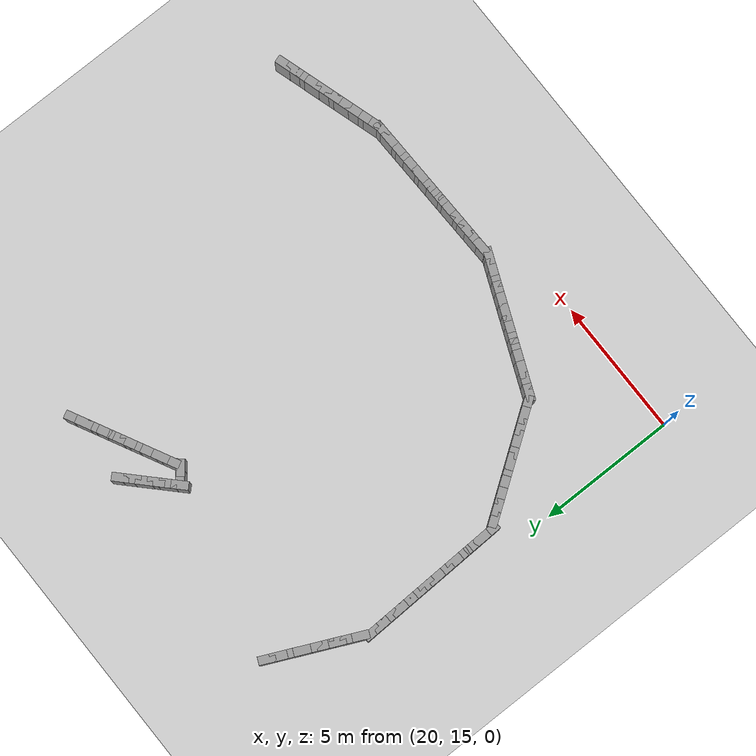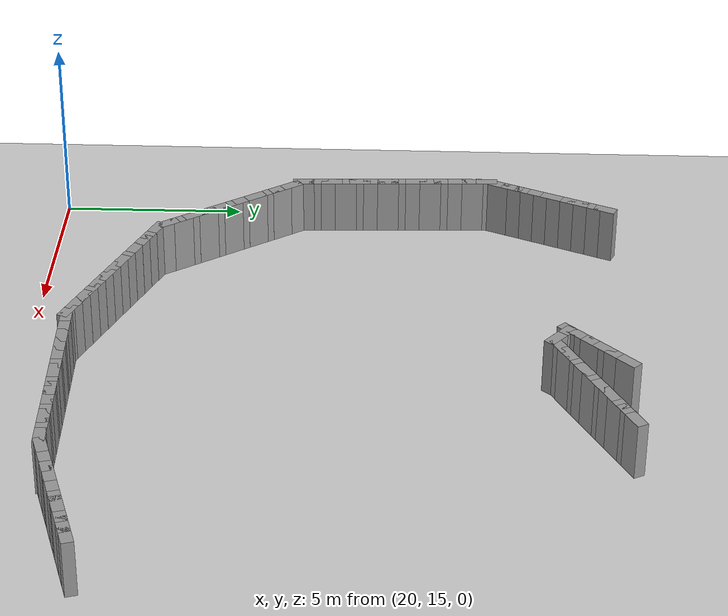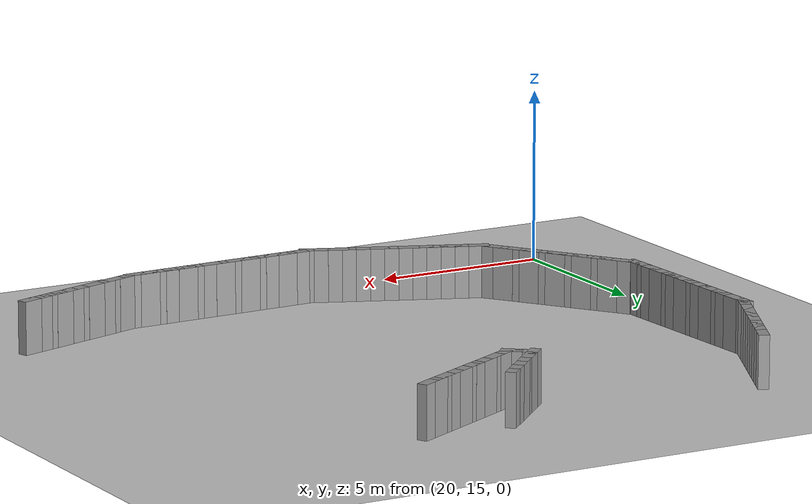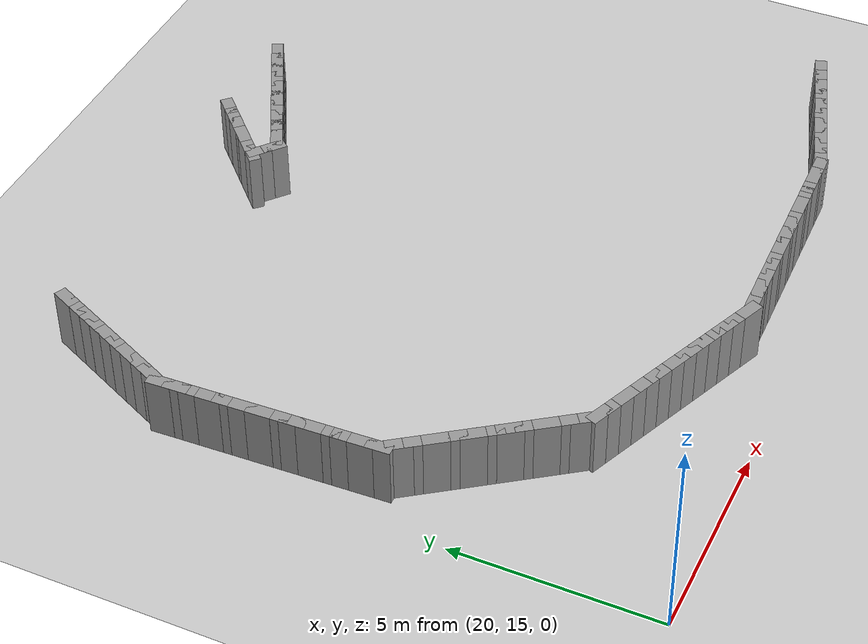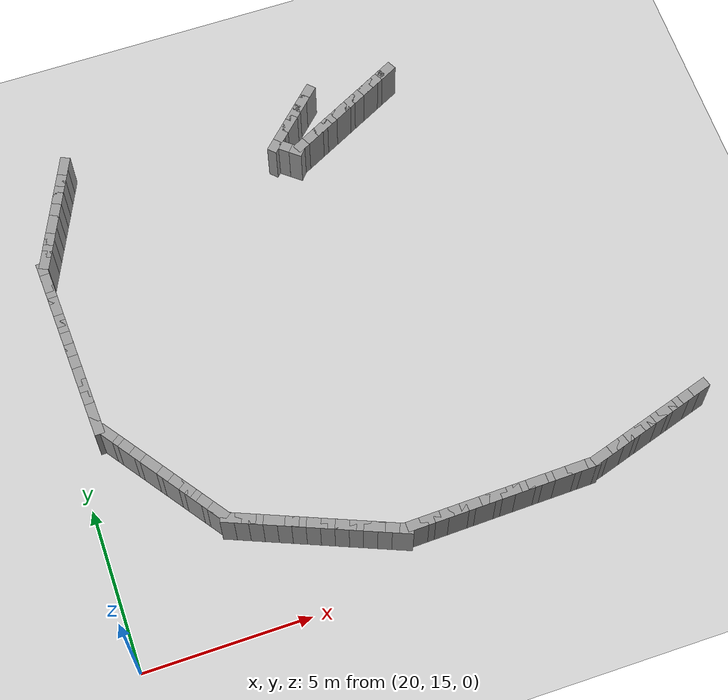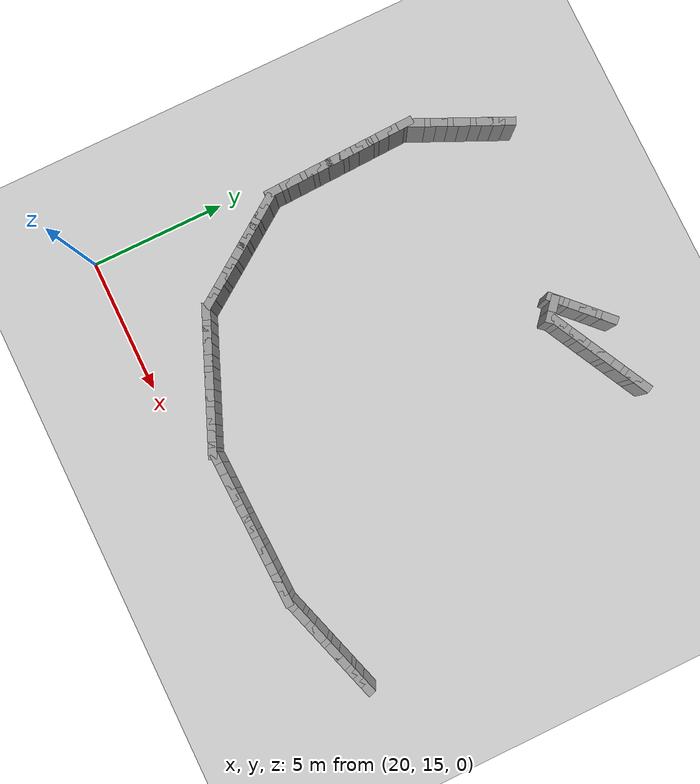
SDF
<sdf version="1.5">
 <world name="test_l_shape">
  <include><uri>model://sun</uri></include>
  <include><uri>model://ground_plane</uri></include>
  <model name="curbL_110">
   <static>true</static>
   <pose>22.130 30.374 0.750 0 0 -2.002</pose>
   <link name="link">
    <collision name="col"><geometry><box><size>0.600 0.300 1.500</size></box></geometry></collision>
    <visual name="vis">
     <geometry><box><size>0.600 0.300 1.500</size></box></geometry>
     <material><ambient>0.6 0.6 0.6 1</ambient><diffuse>0.6 0.6 0.6 1</diffuse></material>
    </visual>
   </link>
  </model>
  <model name="curbL_111">
   <static>true</static>
   <pose>21.963 30.010 0.750 0 0 -2.002</pose>
   <link name="link">
    <collision name="col"><geometry><box><size>0.600 0.300 1.500</size></box></geometry></collision>
    <visual name="vis">
     <geometry><box><size>0.600 0.300 1.500</size></box></geometry>
     <material><ambient>0.6 0.6 0.6 1</ambient><diffuse>0.6 0.6 0.6 1</diffuse></material>
    </visual>
   </link>
  </model>
  <model name="curbL_112">
   <static>true</static>
   <pose>21.796 29.647 0.750 0 0 -2.002</pose>
   <link name="link">
    <collision name="col"><geometry><box><size>0.600 0.300 1.500</size></box></geometry></collision>
    <visual name="vis">
     <geometry><box><size>0.600 0.300 1.500</size></box></geometry>
     <material><ambient>0.6 0.6 0.6 1</ambient><diffuse>0.6 0.6 0.6 1</diffuse></material>
    </visual>
   </link>
  </model>
  <model name="curbL_113">
   <static>true</static>
   <pose>21.629 29.283 0.750 0 0 -2.002</pose>
   <link name="link">
    <collision name="col"><geometry><box><size>0.600 0.300 1.500</size></box></geometry></collision>
    <visual name="vis">
     <geometry><box><size>0.600 0.300 1.500</size></box></geometry>
     <material><ambient>0.6 0.6 0.6 1</ambient><diffuse>0.6 0.6 0.6 1</diffuse></material>
    </visual>
   </link>
  </model>
  <model name="curbL_114">
   <static>true</static>
   <pose>21.462 28.920 0.750 0 0 -2.002</pose>
   <link name="link">
    <collision name="col"><geometry><box><size>0.600 0.300 1.500</size></box></geometry></collision>
    <visual name="vis">
     <geometry><box><size>0.600 0.300 1.500</size></box></geometry>
     <material><ambient>0.6 0.6 0.6 1</ambient><diffuse>0.6 0.6 0.6 1</diffuse></material>
    </visual>
   </link>
  </model>
  <model name="curbL_115">
   <static>true</static>
   <pose>21.295 28.556 0.750 0 0 -2.002</pose>
   <link name="link">
    <collision name="col"><geometry><box><size>0.600 0.300 1.500</size></box></geometry></collision>
    <visual name="vis">
     <geometry><box><size>0.600 0.300 1.500</size></box></geometry>
     <material><ambient>0.6 0.6 0.6 1</ambient><diffuse>0.6 0.6 0.6 1</diffuse></material>
    </visual>
   </link>
  </model>
  <model name="curbL_116">
   <static>true</static>
   <pose>21.128 28.193 0.750 0 0 -2.002</pose>
   <link name="link">
    <collision name="col"><geometry><box><size>0.600 0.300 1.500</size></box></geometry></collision>
    <visual name="vis">
     <geometry><box><size>0.600 0.300 1.500</size></box></geometry>
     <material><ambient>0.6 0.6 0.6 1</ambient><diffuse>0.6 0.6 0.6 1</diffuse></material>
    </visual>
   </link>
  </model>
  <model name="curbL_117">
   <static>true</static>
   <pose>20.961 27.830 0.750 0 0 -2.002</pose>
   <link name="link">
    <collision name="col"><geometry><box><size>0.600 0.300 1.500</size></box></geometry></collision>
    <visual name="vis">
     <geometry><box><size>0.600 0.300 1.500</size></box></geometry>
     <material><ambient>0.6 0.6 0.6 1</ambient><diffuse>0.6 0.6 0.6 1</diffuse></material>
    </visual>
   </link>
  </model>
  <model name="curbL_118">
   <static>true</static>
   <pose>20.794 27.466 0.750 0 0 -2.002</pose>
   <link name="link">
    <collision name="col"><geometry><box><size>0.600 0.300 1.500</size></box></geometry></collision>
    <visual name="vis">
     <geometry><box><size>0.600 0.300 1.500</size></box></geometry>
     <material><ambient>0.6 0.6 0.6 1</ambient><diffuse>0.6 0.6 0.6 1</diffuse></material>
    </visual>
   </link>
  </model>
  <model name="curbL_119">
   <static>true</static>
   <pose>20.639 27.100 0.750 0 0 -1.532</pose>
   <link name="link">
    <collision name="col"><geometry><box><size>0.600 0.300 1.500</size></box></geometry></collision>
    <visual name="vis">
     <geometry><box><size>0.600 0.300 1.500</size></box></geometry>
     <material><ambient>0.6 0.6 0.6 1</ambient><diffuse>0.6 0.6 0.6 1</diffuse></material>
    </visual>
   </link>
  </model>
  <model name="curbL_120">
   <static>true</static>
   <pose>20.655 26.700 0.750 0 0 -1.532</pose>
   <link name="link">
    <collision name="col"><geometry><box><size>0.600 0.300 1.500</size></box></geometry></collision>
    <visual name="vis">
     <geometry><box><size>0.600 0.300 1.500</size></box></geometry>
     <material><ambient>0.6 0.6 0.6 1</ambient><diffuse>0.6 0.6 0.6 1</diffuse></material>
    </visual>
   </link>
  </model>
  <model name="curbL_121">
   <static>true</static>
   <pose>20.670 26.301 0.750 0 0 -1.532</pose>
   <link name="link">
    <collision name="col"><geometry><box><size>0.600 0.300 1.500</size></box></geometry></collision>
    <visual name="vis">
     <geometry><box><size>0.600 0.300 1.500</size></box></geometry>
     <material><ambient>0.6 0.6 0.6 1</ambient><diffuse>0.6 0.6 0.6 1</diffuse></material>
    </visual>
   </link>
  </model>
  <model name="curbL_122">
   <static>true</static>
   <pose>20.685 25.901 0.750 0 0 -1.532</pose>
   <link name="link">
    <collision name="col"><geometry><box><size>0.600 0.300 1.500</size></box></geometry></collision>
    <visual name="vis">
     <geometry><box><size>0.600 0.300 1.500</size></box></geometry>
     <material><ambient>0.6 0.6 0.6 1</ambient><diffuse>0.6 0.6 0.6 1</diffuse></material>
    </visual>
   </link>
  </model>
  <model name="curbL_123">
   <static>true</static>
   <pose>20.701 25.501 0.750 0 0 -1.532</pose>
   <link name="link">
    <collision name="col"><geometry><box><size>0.600 0.300 1.500</size></box></geometry></collision>
    <visual name="vis">
     <geometry><box><size>0.600 0.300 1.500</size></box></geometry>
     <material><ambient>0.6 0.6 0.6 1</ambient><diffuse>0.6 0.6 0.6 1</diffuse></material>
    </visual>
   </link>
  </model>
  <model name="curbL_124">
   <static>true</static>
   <pose>20.716 25.102 0.750 0 0 -1.532</pose>
   <link name="link">
    <collision name="col"><geometry><box><size>0.600 0.300 1.500</size></box></geometry></collision>
    <visual name="vis">
     <geometry><box><size>0.600 0.300 1.500</size></box></geometry>
     <material><ambient>0.6 0.6 0.6 1</ambient><diffuse>0.6 0.6 0.6 1</diffuse></material>
    </visual>
   </link>
  </model>
  <model name="curbL_125">
   <static>true</static>
   <pose>20.731 24.702 0.750 0 0 -1.532</pose>
   <link name="link">
    <collision name="col"><geometry><box><size>0.600 0.300 1.500</size></box></geometry></collision>
    <visual name="vis">
     <geometry><box><size>0.600 0.300 1.500</size></box></geometry>
     <material><ambient>0.6 0.6 0.6 1</ambient><diffuse>0.6 0.6 0.6 1</diffuse></material>
    </visual>
   </link>
  </model>
  <model name="curbL_126">
   <static>true</static>
   <pose>20.747 24.302 0.750 0 0 -1.532</pose>
   <link name="link">
    <collision name="col"><geometry><box><size>0.600 0.300 1.500</size></box></geometry></collision>
    <visual name="vis">
     <geometry><box><size>0.600 0.300 1.500</size></box></geometry>
     <material><ambient>0.6 0.6 0.6 1</ambient><diffuse>0.6 0.6 0.6 1</diffuse></material>
    </visual>
   </link>
  </model>
  <model name="curbL_127">
   <static>true</static>
   <pose>20.762 23.903 0.750 0 0 -1.532</pose>
   <link name="link">
    <collision name="col"><geometry><box><size>0.600 0.300 1.500</size></box></geometry></collision>
    <visual name="vis">
     <geometry><box><size>0.600 0.300 1.500</size></box></geometry>
     <material><ambient>0.6 0.6 0.6 1</ambient><diffuse>0.6 0.6 0.6 1</diffuse></material>
    </visual>
   </link>
  </model>
  <model name="curbL_128">
   <static>true</static>
   <pose>20.777 23.503 0.750 0 0 -1.532</pose>
   <link name="link">
    <collision name="col"><geometry><box><size>0.600 0.300 1.500</size></box></geometry></collision>
    <visual name="vis">
     <geometry><box><size>0.600 0.300 1.500</size></box></geometry>
     <material><ambient>0.6 0.6 0.6 1</ambient><diffuse>0.6 0.6 0.6 1</diffuse></material>
    </visual>
   </link>
  </model>
  <model name="curbL_129">
   <static>true</static>
   <pose>20.793 23.103 0.750 0 0 -1.532</pose>
   <link name="link">
    <collision name="col"><geometry><box><size>0.600 0.300 1.500</size></box></geometry></collision>
    <visual name="vis">
     <geometry><box><size>0.600 0.300 1.500</size></box></geometry>
     <material><ambient>0.6 0.6 0.6 1</ambient><diffuse>0.6 0.6 0.6 1</diffuse></material>
    </visual>
   </link>
  </model>
  <model name="curbL_130">
   <static>true</static>
   <pose>20.808 22.703 0.750 0 0 -1.532</pose>
   <link name="link">
    <collision name="col"><geometry><box><size>0.600 0.300 1.500</size></box></geometry></collision>
    <visual name="vis">
     <geometry><box><size>0.600 0.300 1.500</size></box></geometry>
     <material><ambient>0.6 0.6 0.6 1</ambient><diffuse>0.6 0.6 0.6 1</diffuse></material>
    </visual>
   </link>
  </model>
  <model name="curbL_131">
   <static>true</static>
   <pose>20.823 22.304 0.750 0 0 -1.532</pose>
   <link name="link">
    <collision name="col"><geometry><box><size>0.600 0.300 1.500</size></box></geometry></collision>
    <visual name="vis">
     <geometry><box><size>0.600 0.300 1.500</size></box></geometry>
     <material><ambient>0.6 0.6 0.6 1</ambient><diffuse>0.6 0.6 0.6 1</diffuse></material>
    </visual>
   </link>
  </model>
  <model name="curbL_132">
   <static>true</static>
   <pose>20.839 21.904 0.750 0 0 -1.532</pose>
   <link name="link">
    <collision name="col"><geometry><box><size>0.600 0.300 1.500</size></box></geometry></collision>
    <visual name="vis">
     <geometry><box><size>0.600 0.300 1.500</size></box></geometry>
     <material><ambient>0.6 0.6 0.6 1</ambient><diffuse>0.6 0.6 0.6 1</diffuse></material>
    </visual>
   </link>
  </model>
  <model name="curbL_133">
   <static>true</static>
   <pose>21.061 21.574 0.750 0 0 -0.955</pose>
   <link name="link">
    <collision name="col"><geometry><box><size>0.600 0.300 1.500</size></box></geometry></collision>
    <visual name="vis">
     <geometry><box><size>0.600 0.300 1.500</size></box></geometry>
     <material><ambient>0.6 0.6 0.6 1</ambient><diffuse>0.6 0.6 0.6 1</diffuse></material>
    </visual>
   </link>
  </model>
  <model name="curbL_134">
   <static>true</static>
   <pose>21.292 21.248 0.750 0 0 -0.955</pose>
   <link name="link">
    <collision name="col"><geometry><box><size>0.600 0.300 1.500</size></box></geometry></collision>
    <visual name="vis">
     <geometry><box><size>0.600 0.300 1.500</size></box></geometry>
     <material><ambient>0.6 0.6 0.6 1</ambient><diffuse>0.6 0.6 0.6 1</diffuse></material>
    </visual>
   </link>
  </model>
  <model name="curbL_135">
   <static>true</static>
   <pose>21.523 20.921 0.750 0 0 -0.955</pose>
   <link name="link">
    <collision name="col"><geometry><box><size>0.600 0.300 1.500</size></box></geometry></collision>
    <visual name="vis">
     <geometry><box><size>0.600 0.300 1.500</size></box></geometry>
     <material><ambient>0.6 0.6 0.6 1</ambient><diffuse>0.6 0.6 0.6 1</diffuse></material>
    </visual>
   </link>
  </model>
  <model name="curbL_136">
   <static>true</static>
   <pose>21.754 20.595 0.750 0 0 -0.955</pose>
   <link name="link">
    <collision name="col"><geometry><box><size>0.600 0.300 1.500</size></box></geometry></collision>
    <visual name="vis">
     <geometry><box><size>0.600 0.300 1.500</size></box></geometry>
     <material><ambient>0.6 0.6 0.6 1</ambient><diffuse>0.6 0.6 0.6 1</diffuse></material>
    </visual>
   </link>
  </model>
  <model name="curbL_137">
   <static>true</static>
   <pose>21.985 20.268 0.750 0 0 -0.955</pose>
   <link name="link">
    <collision name="col"><geometry><box><size>0.600 0.300 1.500</size></box></geometry></collision>
    <visual name="vis">
     <geometry><box><size>0.600 0.300 1.500</size></box></geometry>
     <material><ambient>0.6 0.6 0.6 1</ambient><diffuse>0.6 0.6 0.6 1</diffuse></material>
    </visual>
   </link>
  </model>
  <model name="curbL_138">
   <static>true</static>
   <pose>22.216 19.942 0.750 0 0 -0.955</pose>
   <link name="link">
    <collision name="col"><geometry><box><size>0.600 0.300 1.500</size></box></geometry></collision>
    <visual name="vis">
     <geometry><box><size>0.600 0.300 1.500</size></box></geometry>
     <material><ambient>0.6 0.6 0.6 1</ambient><diffuse>0.6 0.6 0.6 1</diffuse></material>
    </visual>
   </link>
  </model>
  <model name="curbL_139">
   <static>true</static>
   <pose>22.447 19.615 0.750 0 0 -0.955</pose>
   <link name="link">
    <collision name="col"><geometry><box><size>0.600 0.300 1.500</size></box></geometry></collision>
    <visual name="vis">
     <geometry><box><size>0.600 0.300 1.500</size></box></geometry>
     <material><ambient>0.6 0.6 0.6 1</ambient><diffuse>0.6 0.6 0.6 1</diffuse></material>
    </visual>
   </link>
  </model>
  <model name="curbL_140">
   <static>true</static>
   <pose>22.678 19.289 0.750 0 0 -0.955</pose>
   <link name="link">
    <collision name="col"><geometry><box><size>0.600 0.300 1.500</size></box></geometry></collision>
    <visual name="vis">
     <geometry><box><size>0.600 0.300 1.500</size></box></geometry>
     <material><ambient>0.6 0.6 0.6 1</ambient><diffuse>0.6 0.6 0.6 1</diffuse></material>
    </visual>
   </link>
  </model>
  <model name="curbL_141">
   <static>true</static>
   <pose>22.909 18.962 0.750 0 0 -0.955</pose>
   <link name="link">
    <collision name="col"><geometry><box><size>0.600 0.300 1.500</size></box></geometry></collision>
    <visual name="vis">
     <geometry><box><size>0.600 0.300 1.500</size></box></geometry>
     <material><ambient>0.6 0.6 0.6 1</ambient><diffuse>0.6 0.6 0.6 1</diffuse></material>
    </visual>
   </link>
  </model>
  <model name="curbL_142">
   <static>true</static>
   <pose>23.140 18.636 0.750 0 0 -0.955</pose>
   <link name="link">
    <collision name="col"><geometry><box><size>0.600 0.300 1.500</size></box></geometry></collision>
    <visual name="vis">
     <geometry><box><size>0.600 0.300 1.500</size></box></geometry>
     <material><ambient>0.6 0.6 0.6 1</ambient><diffuse>0.6 0.6 0.6 1</diffuse></material>
    </visual>
   </link>
  </model>
  <model name="curbL_143">
   <static>true</static>
   <pose>23.371 18.309 0.750 0 0 -0.955</pose>
   <link name="link">
    <collision name="col"><geometry><box><size>0.600 0.300 1.500</size></box></geometry></collision>
    <visual name="vis">
     <geometry><box><size>0.600 0.300 1.500</size></box></geometry>
     <material><ambient>0.6 0.6 0.6 1</ambient><diffuse>0.6 0.6 0.6 1</diffuse></material>
    </visual>
   </link>
  </model>
  <model name="curbL_144">
   <static>true</static>
   <pose>23.637 18.026 0.750 0 0 -0.392</pose>
   <link name="link">
    <collision name="col"><geometry><box><size>0.600 0.300 1.500</size></box></geometry></collision>
    <visual name="vis">
     <geometry><box><size>0.600 0.300 1.500</size></box></geometry>
     <material><ambient>0.6 0.6 0.6 1</ambient><diffuse>0.6 0.6 0.6 1</diffuse></material>
    </visual>
   </link>
  </model>
  <model name="curbL_145">
   <static>true</static>
   <pose>24.006 17.873 0.750 0 0 -0.392</pose>
   <link name="link">
    <collision name="col"><geometry><box><size>0.600 0.300 1.500</size></box></geometry></collision>
    <visual name="vis">
     <geometry><box><size>0.600 0.300 1.500</size></box></geometry>
     <material><ambient>0.6 0.6 0.6 1</ambient><diffuse>0.6 0.6 0.6 1</diffuse></material>
    </visual>
   </link>
  </model>
  <model name="curbL_146">
   <static>true</static>
   <pose>24.376 17.720 0.750 0 0 -0.392</pose>
   <link name="link">
    <collision name="col"><geometry><box><size>0.600 0.300 1.500</size></box></geometry></collision>
    <visual name="vis">
     <geometry><box><size>0.600 0.300 1.500</size></box></geometry>
     <material><ambient>0.6 0.6 0.6 1</ambient><diffuse>0.6 0.6 0.6 1</diffuse></material>
    </visual>
   </link>
  </model>
  <model name="curbL_147">
   <static>true</static>
   <pose>24.745 17.567 0.750 0 0 -0.392</pose>
   <link name="link">
    <collision name="col"><geometry><box><size>0.600 0.300 1.500</size></box></geometry></collision>
    <visual name="vis">
     <geometry><box><size>0.600 0.300 1.500</size></box></geometry>
     <material><ambient>0.6 0.6 0.6 1</ambient><diffuse>0.6 0.6 0.6 1</diffuse></material>
    </visual>
   </link>
  </model>
  <model name="curbL_148">
   <static>true</static>
   <pose>25.115 17.414 0.750 0 0 -0.392</pose>
   <link name="link">
    <collision name="col"><geometry><box><size>0.600 0.300 1.500</size></box></geometry></collision>
    <visual name="vis">
     <geometry><box><size>0.600 0.300 1.500</size></box></geometry>
     <material><ambient>0.6 0.6 0.6 1</ambient><diffuse>0.6 0.6 0.6 1</diffuse></material>
    </visual>
   </link>
  </model>
  <model name="curbL_149">
   <static>true</static>
   <pose>25.484 17.261 0.750 0 0 -0.392</pose>
   <link name="link">
    <collision name="col"><geometry><box><size>0.600 0.300 1.500</size></box></geometry></collision>
    <visual name="vis">
     <geometry><box><size>0.600 0.300 1.500</size></box></geometry>
     <material><ambient>0.6 0.6 0.6 1</ambient><diffuse>0.6 0.6 0.6 1</diffuse></material>
    </visual>
   </link>
  </model>
  <model name="curbL_150">
   <static>true</static>
   <pose>25.854 17.108 0.750 0 0 -0.392</pose>
   <link name="link">
    <collision name="col"><geometry><box><size>0.600 0.300 1.500</size></box></geometry></collision>
    <visual name="vis">
     <geometry><box><size>0.600 0.300 1.500</size></box></geometry>
     <material><ambient>0.6 0.6 0.6 1</ambient><diffuse>0.6 0.6 0.6 1</diffuse></material>
    </visual>
   </link>
  </model>
  <model name="curbL_151">
   <static>true</static>
   <pose>26.224 16.955 0.750 0 0 -0.392</pose>
   <link name="link">
    <collision name="col"><geometry><box><size>0.600 0.300 1.500</size></box></geometry></collision>
    <visual name="vis">
     <geometry><box><size>0.600 0.300 1.500</size></box></geometry>
     <material><ambient>0.6 0.6 0.6 1</ambient><diffuse>0.6 0.6 0.6 1</diffuse></material>
    </visual>
   </link>
  </model>
  <model name="curbL_152">
   <static>true</static>
   <pose>26.593 16.802 0.750 0 0 -0.392</pose>
   <link name="link">
    <collision name="col"><geometry><box><size>0.600 0.300 1.500</size></box></geometry></collision>
    <visual name="vis">
     <geometry><box><size>0.600 0.300 1.500</size></box></geometry>
     <material><ambient>0.6 0.6 0.6 1</ambient><diffuse>0.6 0.6 0.6 1</diffuse></material>
    </visual>
   </link>
  </model>
  <model name="curbL_153">
   <static>true</static>
   <pose>26.963 16.649 0.750 0 0 -0.392</pose>
   <link name="link">
    <collision name="col"><geometry><box><size>0.600 0.300 1.500</size></box></geometry></collision>
    <visual name="vis">
     <geometry><box><size>0.600 0.300 1.500</size></box></geometry>
     <material><ambient>0.6 0.6 0.6 1</ambient><diffuse>0.6 0.6 0.6 1</diffuse></material>
    </visual>
   </link>
  </model>
  <model name="curbL_154">
   <static>true</static>
   <pose>27.332 16.496 0.750 0 0 -0.392</pose>
   <link name="link">
    <collision name="col"><geometry><box><size>0.600 0.300 1.500</size></box></geometry></collision>
    <visual name="vis">
     <geometry><box><size>0.600 0.300 1.500</size></box></geometry>
     <material><ambient>0.6 0.6 0.6 1</ambient><diffuse>0.6 0.6 0.6 1</diffuse></material>
    </visual>
   </link>
  </model>
  <model name="curbL_155">
   <static>true</static>
   <pose>27.702 16.343 0.750 0 0 -0.392</pose>
   <link name="link">
    <collision name="col"><geometry><box><size>0.600 0.300 1.500</size></box></geometry></collision>
    <visual name="vis">
     <geometry><box><size>0.600 0.300 1.500</size></box></geometry>
     <material><ambient>0.6 0.6 0.6 1</ambient><diffuse>0.6 0.6 0.6 1</diffuse></material>
    </visual>
   </link>
  </model>
  <model name="curbL_156">
   <static>true</static>
   <pose>28.072 16.190 0.750 0 0 -0.392</pose>
   <link name="link">
    <collision name="col"><geometry><box><size>0.600 0.300 1.500</size></box></geometry></collision>
    <visual name="vis">
     <geometry><box><size>0.600 0.300 1.500</size></box></geometry>
     <material><ambient>0.6 0.6 0.6 1</ambient><diffuse>0.6 0.6 0.6 1</diffuse></material>
    </visual>
   </link>
  </model>
  <model name="curbL_157">
   <static>true</static>
   <pose>28.469 16.189 0.750 0 0 0.026</pose>
   <link name="link">
    <collision name="col"><geometry><box><size>0.600 0.300 1.500</size></box></geometry></collision>
    <visual name="vis">
     <geometry><box><size>0.600 0.300 1.500</size></box></geometry>
     <material><ambient>0.6 0.6 0.6 1</ambient><diffuse>0.6 0.6 0.6 1</diffuse></material>
    </visual>
   </link>
  </model>
  <model name="curbL_158">
   <static>true</static>
   <pose>28.869 16.200 0.750 0 0 0.026</pose>
   <link name="link">
    <collision name="col"><geometry><box><size>0.600 0.300 1.500</size></box></geometry></collision>
    <visual name="vis">
     <geometry><box><size>0.600 0.300 1.500</size></box></geometry>
     <material><ambient>0.6 0.6 0.6 1</ambient><diffuse>0.6 0.6 0.6 1</diffuse></material>
    </visual>
   </link>
  </model>
  <model name="curbL_159">
   <static>true</static>
   <pose>29.269 16.210 0.750 0 0 0.026</pose>
   <link name="link">
    <collision name="col"><geometry><box><size>0.600 0.300 1.500</size></box></geometry></collision>
    <visual name="vis">
     <geometry><box><size>0.600 0.300 1.500</size></box></geometry>
     <material><ambient>0.6 0.6 0.6 1</ambient><diffuse>0.6 0.6 0.6 1</diffuse></material>
    </visual>
   </link>
  </model>
  <model name="curbL_160">
   <static>true</static>
   <pose>29.669 16.220 0.750 0 0 0.026</pose>
   <link name="link">
    <collision name="col"><geometry><box><size>0.600 0.300 1.500</size></box></geometry></collision>
    <visual name="vis">
     <geometry><box><size>0.600 0.300 1.500</size></box></geometry>
     <material><ambient>0.6 0.6 0.6 1</ambient><diffuse>0.6 0.6 0.6 1</diffuse></material>
    </visual>
   </link>
  </model>
  <model name="curbL_161">
   <static>true</static>
   <pose>30.069 16.231 0.750 0 0 0.026</pose>
   <link name="link">
    <collision name="col"><geometry><box><size>0.600 0.300 1.500</size></box></geometry></collision>
    <visual name="vis">
     <geometry><box><size>0.600 0.300 1.500</size></box></geometry>
     <material><ambient>0.6 0.6 0.6 1</ambient><diffuse>0.6 0.6 0.6 1</diffuse></material>
    </visual>
   </link>
  </model>
  <model name="curbL_162">
   <static>true</static>
   <pose>30.469 16.241 0.750 0 0 0.026</pose>
   <link name="link">
    <collision name="col"><geometry><box><size>0.600 0.300 1.500</size></box></geometry></collision>
    <visual name="vis">
     <geometry><box><size>0.600 0.300 1.500</size></box></geometry>
     <material><ambient>0.6 0.6 0.6 1</ambient><diffuse>0.6 0.6 0.6 1</diffuse></material>
    </visual>
   </link>
  </model>
  <model name="curbL_163">
   <static>true</static>
   <pose>30.869 16.252 0.750 0 0 0.026</pose>
   <link name="link">
    <collision name="col"><geometry><box><size>0.600 0.300 1.500</size></box></geometry></collision>
    <visual name="vis">
     <geometry><box><size>0.600 0.300 1.500</size></box></geometry>
     <material><ambient>0.6 0.6 0.6 1</ambient><diffuse>0.6 0.6 0.6 1</diffuse></material>
    </visual>
   </link>
  </model>
  <model name="curbL_164">
   <static>true</static>
   <pose>31.269 16.262 0.750 0 0 0.026</pose>
   <link name="link">
    <collision name="col"><geometry><box><size>0.600 0.300 1.500</size></box></geometry></collision>
    <visual name="vis">
     <geometry><box><size>0.600 0.300 1.500</size></box></geometry>
     <material><ambient>0.6 0.6 0.6 1</ambient><diffuse>0.6 0.6 0.6 1</diffuse></material>
    </visual>
   </link>
  </model>
  <model name="curbL_165">
   <static>true</static>
   <pose>31.668 16.272 0.750 0 0 0.026</pose>
   <link name="link">
    <collision name="col"><geometry><box><size>0.600 0.300 1.500</size></box></geometry></collision>
    <visual name="vis">
     <geometry><box><size>0.600 0.300 1.500</size></box></geometry>
     <material><ambient>0.6 0.6 0.6 1</ambient><diffuse>0.6 0.6 0.6 1</diffuse></material>
    </visual>
   </link>
  </model>
  <model name="curbL_166">
   <static>true</static>
   <pose>32.068 16.283 0.750 0 0 0.026</pose>
   <link name="link">
    <collision name="col"><geometry><box><size>0.600 0.300 1.500</size></box></geometry></collision>
    <visual name="vis">
     <geometry><box><size>0.600 0.300 1.500</size></box></geometry>
     <material><ambient>0.6 0.6 0.6 1</ambient><diffuse>0.6 0.6 0.6 1</diffuse></material>
    </visual>
   </link>
  </model>
  <model name="curbL_167">
   <static>true</static>
   <pose>32.468 16.293 0.750 0 0 0.026</pose>
   <link name="link">
    <collision name="col"><geometry><box><size>0.600 0.300 1.500</size></box></geometry></collision>
    <visual name="vis">
     <geometry><box><size>0.600 0.300 1.500</size></box></geometry>
     <material><ambient>0.6 0.6 0.6 1</ambient><diffuse>0.6 0.6 0.6 1</diffuse></material>
    </visual>
   </link>
  </model>
  <model name="curbL_168">
   <static>true</static>
   <pose>32.868 16.303 0.750 0 0 0.026</pose>
   <link name="link">
    <collision name="col"><geometry><box><size>0.600 0.300 1.500</size></box></geometry></collision>
    <visual name="vis">
     <geometry><box><size>0.600 0.300 1.500</size></box></geometry>
     <material><ambient>0.6 0.6 0.6 1</ambient><diffuse>0.6 0.6 0.6 1</diffuse></material>
    </visual>
   </link>
  </model>
  <model name="curbL_169">
   <static>true</static>
   <pose>33.268 16.314 0.750 0 0 0.026</pose>
   <link name="link">
    <collision name="col"><geometry><box><size>0.600 0.300 1.500</size></box></geometry></collision>
    <visual name="vis">
     <geometry><box><size>0.600 0.300 1.500</size></box></geometry>
     <material><ambient>0.6 0.6 0.6 1</ambient><diffuse>0.6 0.6 0.6 1</diffuse></material>
    </visual>
   </link>
  </model>
  <model name="curbL_170">
   <static>true</static>
   <pose>33.668 16.324 0.750 0 0 0.026</pose>
   <link name="link">
    <collision name="col"><geometry><box><size>0.600 0.300 1.500</size></box></geometry></collision>
    <visual name="vis">
     <geometry><box><size>0.600 0.300 1.500</size></box></geometry>
     <material><ambient>0.6 0.6 0.6 1</ambient><diffuse>0.6 0.6 0.6 1</diffuse></material>
    </visual>
   </link>
  </model>
  <model name="curbL_171">
   <static>true</static>
   <pose>34.055 16.409 0.750 0 0 0.304</pose>
   <link name="link">
    <collision name="col"><geometry><box><size>0.600 0.300 1.500</size></box></geometry></collision>
    <visual name="vis">
     <geometry><box><size>0.600 0.300 1.500</size></box></geometry>
     <material><ambient>0.6 0.6 0.6 1</ambient><diffuse>0.6 0.6 0.6 1</diffuse></material>
    </visual>
   </link>
  </model>
  <model name="curbL_172">
   <static>true</static>
   <pose>34.437 16.528 0.750 0 0 0.304</pose>
   <link name="link">
    <collision name="col"><geometry><box><size>0.600 0.300 1.500</size></box></geometry></collision>
    <visual name="vis">
     <geometry><box><size>0.600 0.300 1.500</size></box></geometry>
     <material><ambient>0.6 0.6 0.6 1</ambient><diffuse>0.6 0.6 0.6 1</diffuse></material>
    </visual>
   </link>
  </model>
  <model name="curbL_173">
   <static>true</static>
   <pose>34.819 16.648 0.750 0 0 0.304</pose>
   <link name="link">
    <collision name="col"><geometry><box><size>0.600 0.300 1.500</size></box></geometry></collision>
    <visual name="vis">
     <geometry><box><size>0.600 0.300 1.500</size></box></geometry>
     <material><ambient>0.6 0.6 0.6 1</ambient><diffuse>0.6 0.6 0.6 1</diffuse></material>
    </visual>
   </link>
  </model>
  <model name="curbL_174">
   <static>true</static>
   <pose>35.200 16.768 0.750 0 0 0.304</pose>
   <link name="link">
    <collision name="col"><geometry><box><size>0.600 0.300 1.500</size></box></geometry></collision>
    <visual name="vis">
     <geometry><box><size>0.600 0.300 1.500</size></box></geometry>
     <material><ambient>0.6 0.6 0.6 1</ambient><diffuse>0.6 0.6 0.6 1</diffuse></material>
    </visual>
   </link>
  </model>
  <model name="curbL_175">
   <static>true</static>
   <pose>35.582 16.887 0.750 0 0 0.304</pose>
   <link name="link">
    <collision name="col"><geometry><box><size>0.600 0.300 1.500</size></box></geometry></collision>
    <visual name="vis">
     <geometry><box><size>0.600 0.300 1.500</size></box></geometry>
     <material><ambient>0.6 0.6 0.6 1</ambient><diffuse>0.6 0.6 0.6 1</diffuse></material>
    </visual>
   </link>
  </model>
  <model name="curbL_176">
   <static>true</static>
   <pose>35.964 17.007 0.750 0 0 0.304</pose>
   <link name="link">
    <collision name="col"><geometry><box><size>0.600 0.300 1.500</size></box></geometry></collision>
    <visual name="vis">
     <geometry><box><size>0.600 0.300 1.500</size></box></geometry>
     <material><ambient>0.6 0.6 0.6 1</ambient><diffuse>0.6 0.6 0.6 1</diffuse></material>
    </visual>
   </link>
  </model>
  <model name="curbL_177">
   <static>true</static>
   <pose>36.345 17.127 0.750 0 0 0.304</pose>
   <link name="link">
    <collision name="col"><geometry><box><size>0.600 0.300 1.500</size></box></geometry></collision>
    <visual name="vis">
     <geometry><box><size>0.600 0.300 1.500</size></box></geometry>
     <material><ambient>0.6 0.6 0.6 1</ambient><diffuse>0.6 0.6 0.6 1</diffuse></material>
    </visual>
   </link>
  </model>
  <model name="curbL_178">
   <static>true</static>
   <pose>36.727 17.246 0.750 0 0 0.304</pose>
   <link name="link">
    <collision name="col"><geometry><box><size>0.600 0.300 1.500</size></box></geometry></collision>
    <visual name="vis">
     <geometry><box><size>0.600 0.300 1.500</size></box></geometry>
     <material><ambient>0.6 0.6 0.6 1</ambient><diffuse>0.6 0.6 0.6 1</diffuse></material>
    </visual>
   </link>
  </model>
  <model name="curbL_179">
   <static>true</static>
   <pose>37.109 17.366 0.750 0 0 0.304</pose>
   <link name="link">
    <collision name="col"><geometry><box><size>0.600 0.300 1.500</size></box></geometry></collision>
    <visual name="vis">
     <geometry><box><size>0.600 0.300 1.500</size></box></geometry>
     <material><ambient>0.6 0.6 0.6 1</ambient><diffuse>0.6 0.6 0.6 1</diffuse></material>
    </visual>
   </link>
  </model>
  <model name="curbL_180">
   <static>true</static>
   <pose>37.490 17.486 0.750 0 0 0.304</pose>
   <link name="link">
    <collision name="col"><geometry><box><size>0.600 0.300 1.500</size></box></geometry></collision>
    <visual name="vis">
     <geometry><box><size>0.600 0.300 1.500</size></box></geometry>
     <material><ambient>0.6 0.6 0.6 1</ambient><diffuse>0.6 0.6 0.6 1</diffuse></material>
    </visual>
   </link>
  </model>
  <model name="curbR_0">
   <static>true</static>
   <pose>28.464 29.063 0.750 0 0 0.775</pose>
   <link name="link">
    <collision name="col"><geometry><box><size>0.600 0.300 1.500</size></box></geometry></collision>
    <visual name="vis">
     <geometry><box><size>0.600 0.300 1.500</size></box></geometry>
     <material><ambient>0.6 0.6 0.6 1</ambient><diffuse>0.6 0.6 0.6 1</diffuse></material>
    </visual>
   </link>
  </model>
  <model name="curbR_1">
   <static>true</static>
   <pose>28.749 29.343 0.750 0 0 0.775</pose>
   <link name="link">
    <collision name="col"><geometry><box><size>0.600 0.300 1.500</size></box></geometry></collision>
    <visual name="vis">
     <geometry><box><size>0.600 0.300 1.500</size></box></geometry>
     <material><ambient>0.6 0.6 0.6 1</ambient><diffuse>0.6 0.6 0.6 1</diffuse></material>
    </visual>
   </link>
  </model>
  <model name="curbR_2">
   <static>true</static>
   <pose>29.035 29.623 0.750 0 0 0.775</pose>
   <link name="link">
    <collision name="col"><geometry><box><size>0.600 0.300 1.500</size></box></geometry></collision>
    <visual name="vis">
     <geometry><box><size>0.600 0.300 1.500</size></box></geometry>
     <material><ambient>0.6 0.6 0.6 1</ambient><diffuse>0.6 0.6 0.6 1</diffuse></material>
    </visual>
   </link>
  </model>
  <model name="curbR_3">
   <static>true</static>
   <pose>29.320 29.903 0.750 0 0 0.775</pose>
   <link name="link">
    <collision name="col"><geometry><box><size>0.600 0.300 1.500</size></box></geometry></collision>
    <visual name="vis">
     <geometry><box><size>0.600 0.300 1.500</size></box></geometry>
     <material><ambient>0.6 0.6 0.6 1</ambient><diffuse>0.6 0.6 0.6 1</diffuse></material>
    </visual>
   </link>
  </model>
  <model name="curbR_4">
   <static>true</static>
   <pose>29.606 30.183 0.750 0 0 0.775</pose>
   <link name="link">
    <collision name="col"><geometry><box><size>0.600 0.300 1.500</size></box></geometry></collision>
    <visual name="vis">
     <geometry><box><size>0.600 0.300 1.500</size></box></geometry>
     <material><ambient>0.6 0.6 0.6 1</ambient><diffuse>0.6 0.6 0.6 1</diffuse></material>
    </visual>
   </link>
  </model>
  <model name="curbR_5">
   <static>true</static>
   <pose>29.892 30.463 0.750 0 0 0.775</pose>
   <link name="link">
    <collision name="col"><geometry><box><size>0.600 0.300 1.500</size></box></geometry></collision>
    <visual name="vis">
     <geometry><box><size>0.600 0.300 1.500</size></box></geometry>
     <material><ambient>0.6 0.6 0.6 1</ambient><diffuse>0.6 0.6 0.6 1</diffuse></material>
    </visual>
   </link>
  </model>
  <model name="curbR_83">
   <static>true</static>
   <pose>32.447 30.455 0.750 0 0 -2.663</pose>
   <link name="link">
    <collision name="col"><geometry><box><size>0.600 0.300 1.500</size></box></geometry></collision>
    <visual name="vis">
     <geometry><box><size>0.600 0.300 1.500</size></box></geometry>
     <material><ambient>0.6 0.6 0.6 1</ambient><diffuse>0.6 0.6 0.6 1</diffuse></material>
    </visual>
   </link>
  </model>
  <model name="curbR_84">
   <static>true</static>
   <pose>32.092 30.271 0.750 0 0 -2.663</pose>
   <link name="link">
    <collision name="col"><geometry><box><size>0.600 0.300 1.500</size></box></geometry></collision>
    <visual name="vis">
     <geometry><box><size>0.600 0.300 1.500</size></box></geometry>
     <material><ambient>0.6 0.6 0.6 1</ambient><diffuse>0.6 0.6 0.6 1</diffuse></material>
    </visual>
   </link>
  </model>
  <model name="curbR_85">
   <static>true</static>
   <pose>31.737 30.086 0.750 0 0 -2.663</pose>
   <link name="link">
    <collision name="col"><geometry><box><size>0.600 0.300 1.500</size></box></geometry></collision>
    <visual name="vis">
     <geometry><box><size>0.600 0.300 1.500</size></box></geometry>
     <material><ambient>0.6 0.6 0.6 1</ambient><diffuse>0.6 0.6 0.6 1</diffuse></material>
    </visual>
   </link>
  </model>
  <model name="curbR_86">
   <static>true</static>
   <pose>31.382 29.902 0.750 0 0 -2.663</pose>
   <link name="link">
    <collision name="col"><geometry><box><size>0.600 0.300 1.500</size></box></geometry></collision>
    <visual name="vis">
     <geometry><box><size>0.600 0.300 1.500</size></box></geometry>
     <material><ambient>0.6 0.6 0.6 1</ambient><diffuse>0.6 0.6 0.6 1</diffuse></material>
    </visual>
   </link>
  </model>
  <model name="curbR_87">
   <static>true</static>
   <pose>31.027 29.718 0.750 0 0 -2.663</pose>
   <link name="link">
    <collision name="col"><geometry><box><size>0.600 0.300 1.500</size></box></geometry></collision>
    <visual name="vis">
     <geometry><box><size>0.600 0.300 1.500</size></box></geometry>
     <material><ambient>0.6 0.6 0.6 1</ambient><diffuse>0.6 0.6 0.6 1</diffuse></material>
    </visual>
   </link>
  </model>
  <model name="curbR_88">
   <static>true</static>
   <pose>30.672 29.533 0.750 0 0 -2.663</pose>
   <link name="link">
    <collision name="col"><geometry><box><size>0.600 0.300 1.500</size></box></geometry></collision>
    <visual name="vis">
     <geometry><box><size>0.600 0.300 1.500</size></box></geometry>
     <material><ambient>0.6 0.6 0.6 1</ambient><diffuse>0.6 0.6 0.6 1</diffuse></material>
    </visual>
   </link>
  </model>
  <model name="curbR_89">
   <static>true</static>
   <pose>30.317 29.349 0.750 0 0 -2.663</pose>
   <link name="link">
    <collision name="col"><geometry><box><size>0.600 0.300 1.500</size></box></geometry></collision>
    <visual name="vis">
     <geometry><box><size>0.600 0.300 1.500</size></box></geometry>
     <material><ambient>0.6 0.6 0.6 1</ambient><diffuse>0.6 0.6 0.6 1</diffuse></material>
    </visual>
   </link>
  </model>
  <model name="curbR_90">
   <static>true</static>
   <pose>29.962 29.165 0.750 0 0 -2.663</pose>
   <link name="link">
    <collision name="col"><geometry><box><size>0.600 0.300 1.500</size></box></geometry></collision>
    <visual name="vis">
     <geometry><box><size>0.600 0.300 1.500</size></box></geometry>
     <material><ambient>0.6 0.6 0.6 1</ambient><diffuse>0.6 0.6 0.6 1</diffuse></material>
    </visual>
   </link>
  </model>
  <model name="curbR_91">
   <static>true</static>
   <pose>29.607 28.980 0.750 0 0 -2.663</pose>
   <link name="link">
    <collision name="col"><geometry><box><size>0.600 0.300 1.500</size></box></geometry></collision>
    <visual name="vis">
     <geometry><box><size>0.600 0.300 1.500</size></box></geometry>
     <material><ambient>0.6 0.6 0.6 1</ambient><diffuse>0.6 0.6 0.6 1</diffuse></material>
    </visual>
   </link>
  </model>
  <model name="curbR_92">
   <static>true</static>
   <pose>29.252 28.796 0.750 0 0 -2.663</pose>
   <link name="link">
    <collision name="col"><geometry><box><size>0.600 0.300 1.500</size></box></geometry></collision>
    <visual name="vis">
     <geometry><box><size>0.600 0.300 1.500</size></box></geometry>
     <material><ambient>0.6 0.6 0.6 1</ambient><diffuse>0.6 0.6 0.6 1</diffuse></material>
    </visual>
   </link>
  </model>
  <model name="curbR_93">
   <static>true</static>
   <pose>28.906 28.695 0.750 0 0 2.447</pose>
   <link name="link">
    <collision name="col"><geometry><box><size>0.600 0.300 1.500</size></box></geometry></collision>
    <visual name="vis">
     <geometry><box><size>0.600 0.300 1.500</size></box></geometry>
     <material><ambient>0.6 0.6 0.6 1</ambient><diffuse>0.6 0.6 0.6 1</diffuse></material>
    </visual>
   </link>
  </model>
  <model name="curbR_94">
   <static>true</static>
   <pose>28.598 28.951 0.750 0 0 2.447</pose>
   <link name="link">
    <collision name="col"><geometry><box><size>0.600 0.300 1.500</size></box></geometry></collision>
    <visual name="vis">
     <geometry><box><size>0.600 0.300 1.500</size></box></geometry>
     <material><ambient>0.6 0.6 0.6 1</ambient><diffuse>0.6 0.6 0.6 1</diffuse></material>
    </visual>
   </link>
  </model>
 </world>
</sdf>
